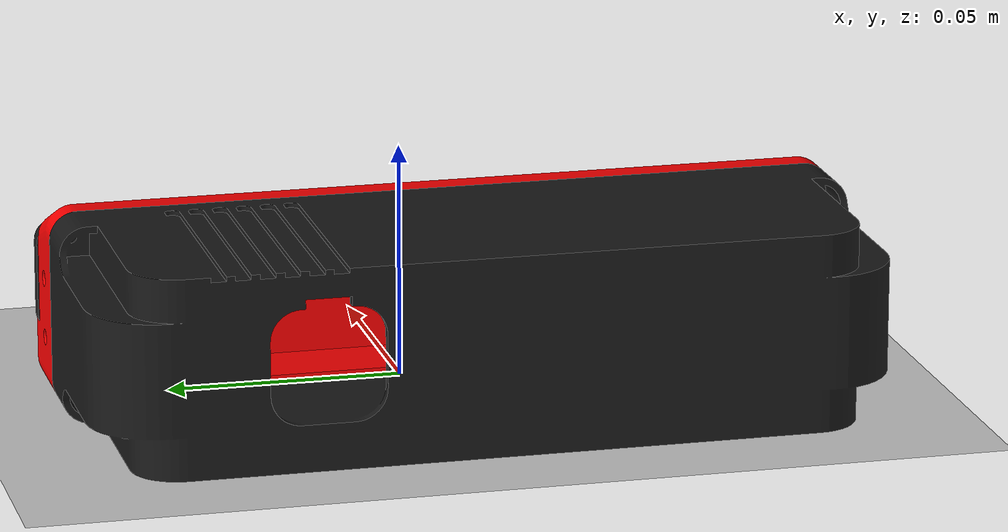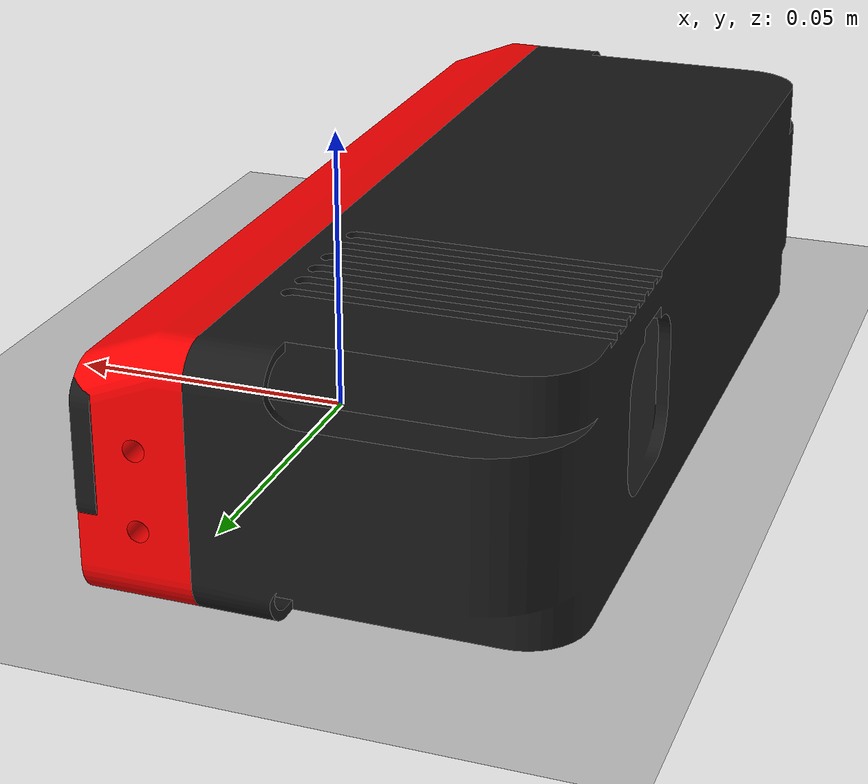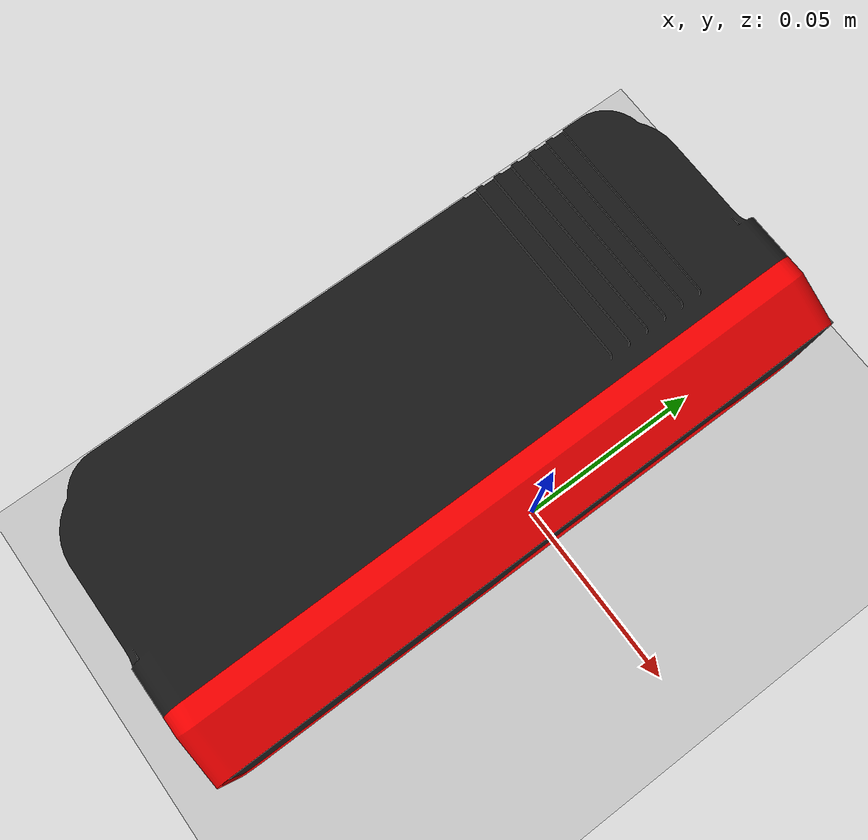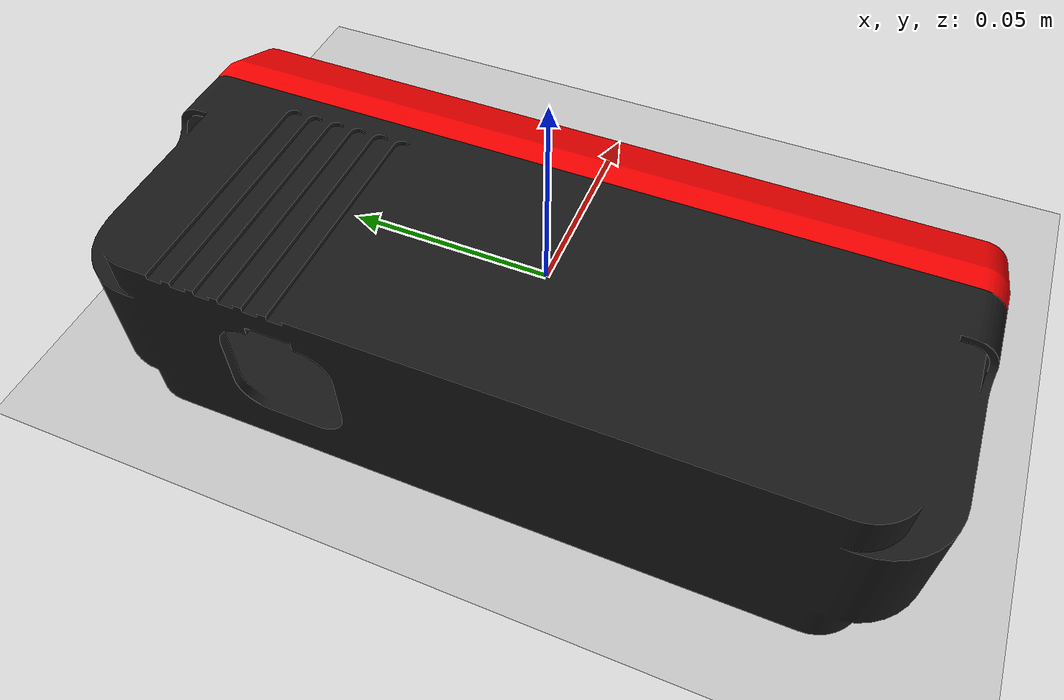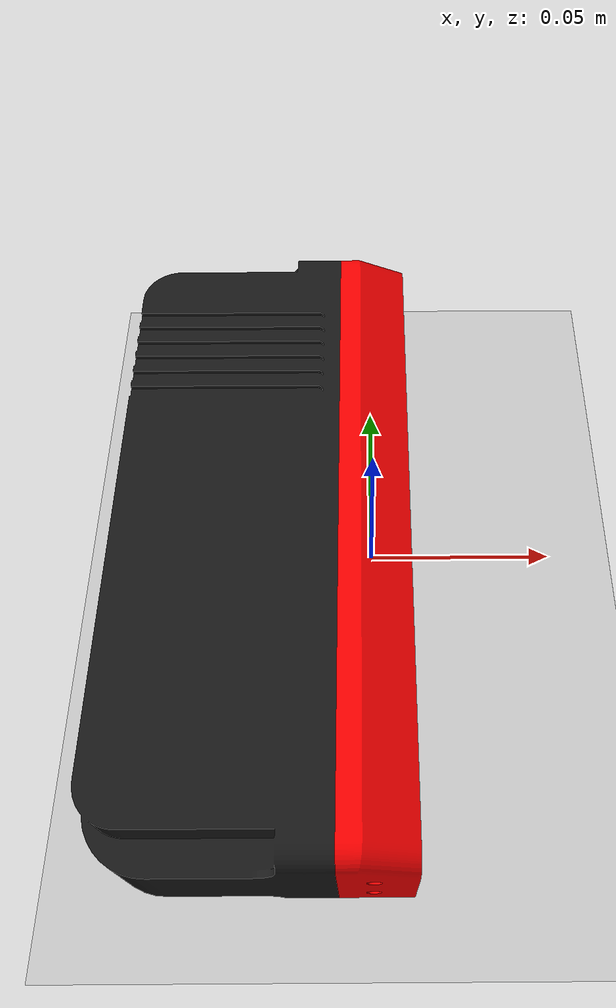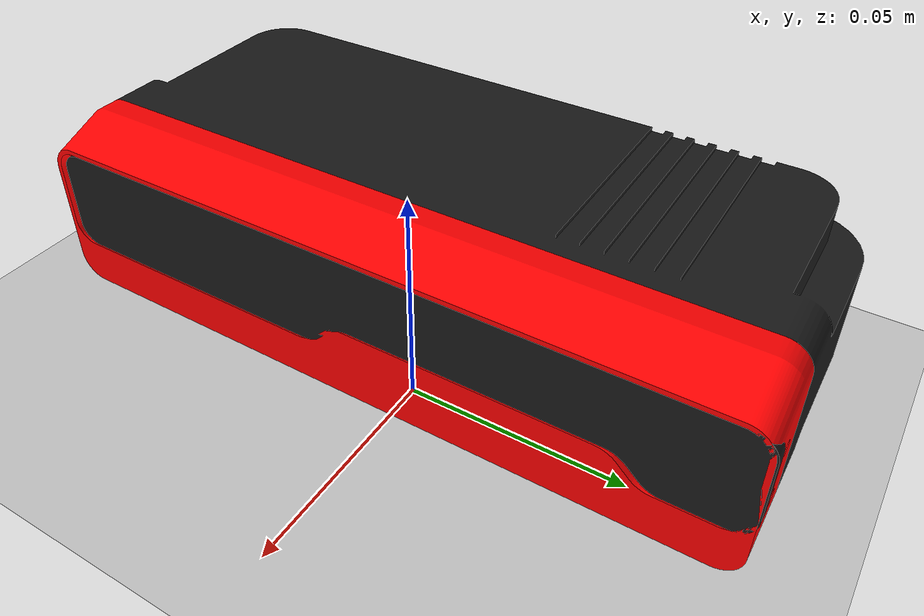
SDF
<?xml version="1.0" ?>
<sdf version="1.5">
  <world name="default">
    <!-- A global light source -->
    <include>
      <uri>model://sun</uri>
    </include>
    <!-- A ground plane -->
    <include>
      <uri>model://ground_plane</uri>
    </include>

    <!-- A testing model that includes the AWL16 sensor model -->
    <model name="awl16">
      <include>
        <uri>model://awl16</uri>
      </include>
      <static>true</static>
      <pos>0 0 0</pos>

    </model>

  </world>
</sdf>

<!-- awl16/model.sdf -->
<sdf version="1.5">
    <model name="AWL16">
    offset_x=0
    offset_y=0
    offset_z=0
    rot_x=0
    rot_y=0
    rot_z=0

	<static>true</static>
      <!-- Give the base link a unique name -->
      <link name="body">
	<!-- Add a ray sensor, and give it a name -->
	<sensor type="ray" name="sensor1">

	  <pose>0.125 0.065 0.075 0 1.5707 1.5707</pose>

	  <!-- Enable visualization to see the rays in the GUI -->
	  <visualize>true</visualize>

	  <!-- Set the update rate of the sensor -->
	  <update_rate>30</update_rate>
	<ray>

	  <!-- The scan element contains the horizontal and vertical beams.
	       We are leaving out the vertical beams for this tutorial. -->
	  <scan>

	    <!-- The horizontal beams -->
	    <horizontal>
	      <!-- The romanof has 8 horizontal receptors(samples) -->
	      <samples>40</samples>

	      <!-- Resolution is multiplied by samples to determine number of
		   simulated beams vs interpolated beams. See:
		   http://sdformat.org/spec?ver=1.6&elem=sensor#horizontal_resolution
		   -->
	      <resolution>1</resolution>

	      <!-- Minimum angle in radians -->
	      <min_angle>-0.26</min_angle>

	      <!-- Maximum angle in radians -->
	      <max_angle>0.26</max_angle>
	    </horizontal>
	    <vertical>
	      <!-- The romanof has 8 horizontal receptors(samples) -->
	      <samples>10</samples>

	      <!-- Resolution is multiplied by samples to determine number of
		   simulated beams vs interpolated beams. See:
		   http://sdformat.org/spec?ver=1.6&elem=sensor#horizontal_resolution
		   -->
	      <resolution>1</resolution>

	      <!-- Minimum angle in radians -->
	      <min_angle>-0.02</min_angle>

	      <!-- Maximum angle in radians -->
	      <max_angle>0.02</max_angle>
	    </vertical>

	  </scan>

	  <!-- Range defines characteristics of an individual beam -->
	  <range>

	    <!-- Minimum distance of the beam -->
	    <min>0.05</min>

	    <!-- Maximum distance of the beam -->
	    <max>70</max>

	    <!-- Linear resolution of the beam -->
	    <resolution>0.02</resolution>
	  </range>
	</ray>
          <plugin name="laser" filename="libgazebo_ros_laser.so">
            <topicName>/awl16</topicName>
            <frameName>phantom_intelligence</frameName>
          </plugin>
	</sensor>

        <inertial>
          <mass>1.2</mass>
          <inertia>
            <ixx>0.001087473</ixx>
            <iyy>0.001087473</iyy>
            <izz>0.001092437</izz>
            <ixy>0</ixy>
            <ixz>0</ixz>
            <iyz>0</iyz>
          </inertia>
        </inertial>
        <!-- Offset the base by half the lenght of the cylinder -->
        <pose>0.0558 0.07677 -0.04 1.5707 0 -1.5707</pose>

        <!-- The visual is mostly a copy of the collision -->
	 <visual name="base_visual">
	   <geometry>
	     <!-- The mesh tag indicates that we will use a 3D mesh as
		  a visual -->
	     <mesh>
	       <!-- The URI should refer to the 3D mesh. The "model:"
		   URI scheme indicates that the we are referencing a Gazebo
		   model. -->
	       <uri>model://awl16/meshes/awl16_body.STL</uri>
	     </mesh>
	   </geometry>
	  <material>
	    <ambient>1 0 0 1</ambient>
	    <diffuse>1 0 0 1</diffuse>
	    <specular>0.1 0.1 0.1 1</specular>
	    <emissive>0 0 0 0</emissive>
	  </material>
	 </visual>
      </link>

      <link name="back">
        <inertial>
          <mass>1.2</mass>
          <inertia>
            <ixx>0.001087473</ixx>
            <iyy>0.001087473</iyy>
            <izz>0.001092437</izz>
            <ixy>0</ixy>
            <ixz>0</ixz>
            <iyz>0</iyz>
          </inertia>
        </inertial>
        <!-- Offset the base by half the lenght of the cylinder -->
        <pose>0.0558 0.07677 -0.04 1.5707 0 -1.5707</pose>

        <!-- The visual is mostly a copy of the collision -->
	 <visual name="base_visual">
	   <geometry>
	     <!-- The mesh tag indicates that we will use a 3D mesh as
		  a visual -->
	     <mesh>
	       <!-- The URI should refer to the 3D mesh. The "model:"
		   URI scheme indicates that the we are referencing a Gazebo
		   model. -->
	       <uri>model://awl16/meshes/awl16_back_casing.STL</uri>
	     </mesh>
	   </geometry>
	  <material>
	    <ambient>0.1 0.1 0.1 1</ambient>
	    <diffuse>0.1 0.1 0.1 1</diffuse>
	    <specular>0.1 0.1 0.1 1</specular>
	    <emissive>0 0 0 0</emissive>
	  </material>
	 </visual>
      </link>

      <link name="window">
        <inertial>
          <mass>1.2</mass>
          <inertia>
            <ixx>0.001087473</ixx>
            <iyy>0.001087473</iyy>
            <izz>0.001092437</izz>
            <ixy>0</ixy>
            <ixz>0</ixz>
            <iyz>0</iyz>
          </inertia>
        </inertial>
        <!-- Offset the base by half the lenght of the cylinder -->
        <pose>0.0558 0.07677 -0.04 1.5707 0 -1.5707</pose>

        <!-- The visual is mostly a copy of the collision -->
	 <visual name="base_visual">
	   <geometry>
	     <!-- The mesh tag indicates that we will use a 3D mesh as
		  a visual -->
	     <mesh>
	       <!-- The URI should refer to the 3D mesh. The "model:"
		   URI scheme indicates that the we are referencing a Gazebo
		   model. -->
	       <uri>model://awl16/meshes/awl16_window.STL</uri>
	     </mesh>
	   </geometry>
	  <material>
	    <ambient>0.1 0.1 0.1 1</ambient>
	    <diffuse>0.1 0.1 0.1 1</diffuse>
	    <specular>0.1 0.1 0.1 1</specular>
	    <emissive>0 0 0 0</emissive>
	  </material>
	 </visual>
      </link>
	<!-- Each joint must have a unique name -->

	<!-- Each joint must have a unique name -->
	<joint type="fixed" name="joint3">

	  <!-- Position the joint at the bottom of the top link -->
	  <pose>0 0 -0.036785 0 0 0</pose>

	  <!-- Use the base link as the parent of the joint -->
	  <parent>body</parent>

	  <!-- Use the top link as the child of the joint -->
	  <child>window</child>
	</joint>
	<joint type="fixed" name="joint4">

	  <!-- Position the joint at the bottom of the top link -->
	  <pose>0 0 -0.036785 0 0 0</pose>

	  <!-- Use the base link as the parent of the joint -->
	  <parent>body</parent>

	  <!-- Use the top link as the child of the joint -->
	  <child>back</child>
	</joint>

    </model>
</sdf>
